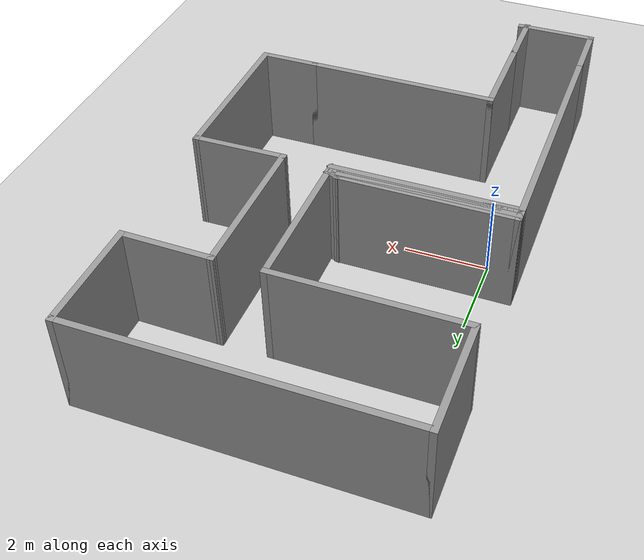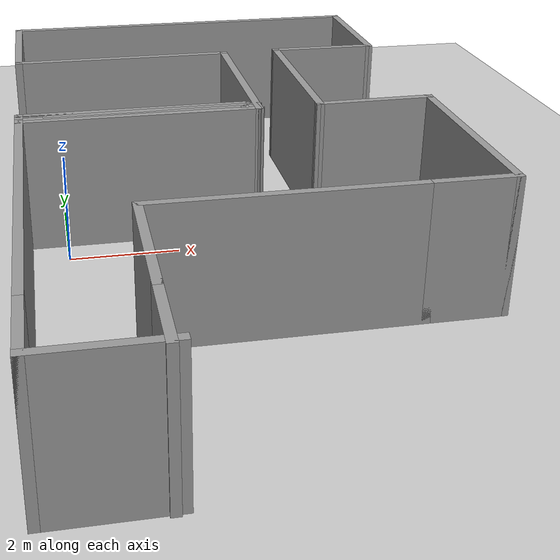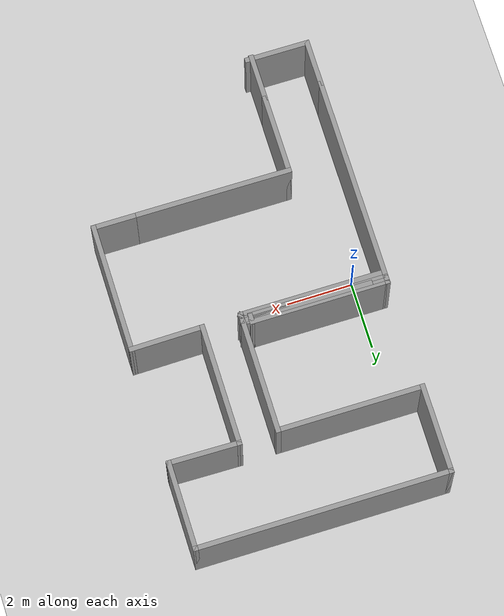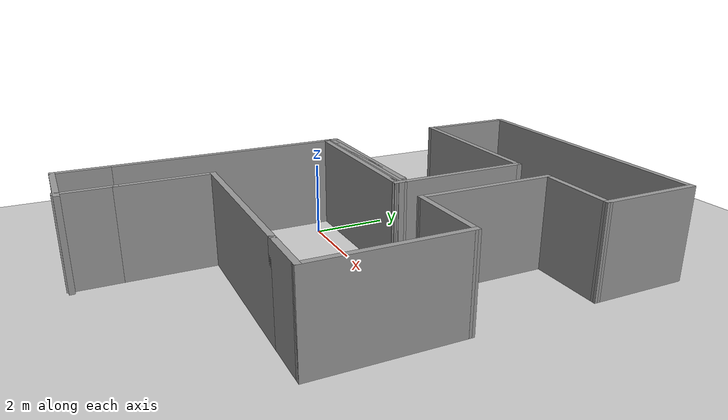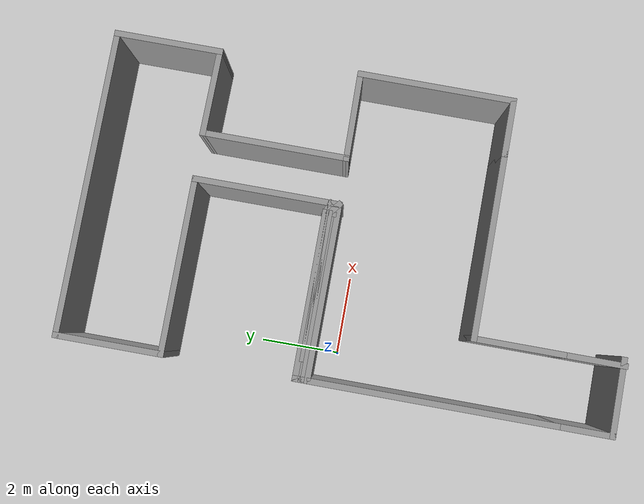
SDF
<sdf version="1.7">
 <world name="default">
  <light name="sun" type="directional">
   <pose>0 0 10 0 -0 0</pose>
   <diffuse>0.8 0.8 0.8 1</diffuse>
   <specular>0.2 0.2 0.2 1</specular>
   <attenuation>
    <range>1000</range>
    <constant>0.9</constant>
    <linear>0.01</linear>
    <quadratic>0.001</quadratic>
   </attenuation>
   <direction>-0.5 0.1 -0.9</direction>
   <spot><inner_angle>0</inner_angle><outer_angle>0</outer_angle><falloff>0</falloff></spot>
  </light>
  <model name="ground_plane">
   <static>1</static>
   <link name="link">
    <collision name="collision">
     <geometry><plane><normal>0 0 1</normal><size>100 100</size></plane></geometry>
     <surface>
      <contact><collide_bitmask>65535</collide_bitmask></contact>
      <friction><ode><mu>100</mu><mu2>50</mu2></ode></friction>
     </surface>
    </collision>
    <visual name="visual">
     <cast_shadows>0</cast_shadows>
     <geometry><plane><normal>0 0 1</normal><size>100 100</size></plane></geometry>
     <material>
      <script><uri>file://media/materials/scripts/gazebo.material</uri><name>Gazebo/Grey</name></script>
     </material>
    </visual>
   </link>
  </model>
  <gravity>0 0 -9.8</gravity>
  <magnetic_field>6e-06 2.3e-05 -4.2e-05</magnetic_field>
  <atmosphere type="adiabatic"/>
  <physics type="ode">
   <max_step_size>0.001</max_step_size>
   <real_time_factor>1</real_time_factor>
   <real_time_update_rate>1000</real_time_update_rate>
  </physics>
  <scene><ambient>0.4 0.4 0.4 1</ambient><background>0.7 0.7 0.7 1</background><shadows>1</shadows></scene>
  <spherical_coordinates>
   <surface_model>EARTH_WGS84</surface_model>
   <latitude_deg>0</latitude_deg>
   <longitude_deg>0</longitude_deg>
   <elevation>0</elevation>
   <heading_deg>0</heading_deg>
  </spherical_coordinates>
  <model name="paper3">
   <pose>3.09243 -0.04934 0 0 -0 0</pose>
   <link name="Wall_1">
    <collision name="Wall_1_Collision">
     <geometry><box><size>6.25 0.15 2.5</size></box></geometry>
     <pose>0 0 1.25 0 -0 0</pose>
    </collision>
    <visual name="Wall_1_Visual">
     <pose>0 0 1.25 0 -0 0</pose>
     <geometry><box><size>6.25 0.15 2.5</size></box></geometry>
     <material>
      <script><uri>file://media/materials/scripts/gazebo.material</uri><name>Gazebo/Grey</name></script>
      <ambient>1 1 1 1</ambient>
     </material>
     <meta><layer>0</layer></meta>
    </visual>
    <pose>-3.83052 -2.405 0 0 -0 -1.5708</pose>
   </link>
   <link name="Wall_12">
    <collision name="Wall_12_Collision">
     <geometry><box><size>0.25 0.15 2.5</size></box></geometry>
     <pose>0 0 1.25 0 -0 0</pose>
    </collision>
    <visual name="Wall_12_Visual">
     <pose>0 0 1.25 0 -0 0</pose>
     <geometry><box><size>0.25 0.15 2.5</size></box></geometry>
     <material>
      <script><uri>file://media/materials/scripts/gazebo.material</uri><name>Gazebo/Grey</name></script>
      <ambient>1 1 1 1</ambient>
     </material>
     <meta><layer>0</layer></meta>
    </visual>
    <pose>-3.83052 0.695 0 0 -0 1.5708</pose>
   </link>
   <link name="Wall_13">
    <collision name="Wall_13_Collision">
     <geometry><box><size>4.25 0.15 2.5</size></box></geometry>
     <pose>0 0 1.25 0 -0 0</pose>
    </collision>
    <visual name="Wall_13_Visual">
     <pose>0 0 1.25 0 -0 0</pose>
     <geometry><box><size>4.25 0.15 2.5</size></box></geometry>
     <material>
      <script><uri>file://media/materials/scripts/gazebo.material</uri><name>Gazebo/Grey</name></script>
      <ambient>1 1 1 1</ambient>
     </material>
     <meta><layer>0</layer></meta>
    </visual>
    <pose>-1.78052 0.745 0 0 -0 0</pose>
   </link>
   <link name="Wall_14">
    <collision name="Wall_14_Collision">
     <geometry><box><size>0.25 0.15 2.5</size></box></geometry>
     <pose>0 0 1.25 0 -0 0</pose>
    </collision>
    <visual name="Wall_14_Visual">
     <pose>0 0 1.25 0 -0 0</pose>
     <geometry><box><size>0.25 0.15 2.5</size></box></geometry>
     <material>
      <script><uri>file://media/materials/scripts/gazebo.material</uri><name>Gazebo/Grey</name></script>
      <ambient>1 1 1 1</ambient>
     </material>
     <meta><layer>0</layer></meta>
    </visual>
    <pose>0.269483 0.795 0 0 -0 1.5708</pose>
   </link>
   <link name="Wall_15">
    <collision name="Wall_15_Collision">
     <geometry><box><size>3.75 0.15 2.5</size></box></geometry>
     <pose>0 0 1.25 0 -0 0</pose>
    </collision>
    <visual name="Wall_15_Visual">
     <pose>0 0 1.25 0 -0 0</pose>
     <geometry><box><size>3.75 0.15 2.5</size></box></geometry>
     <material>
      <script><uri>file://media/materials/scripts/gazebo.material</uri><name>Gazebo/Grey</name></script>
      <ambient>1 1 1 1</ambient>
     </material>
     <meta><layer>0</layer></meta>
    </visual>
    <pose>-1.53052 0.845 0 0 -0 3.14159</pose>
   </link>
   <link name="Wall_17">
    <collision name="Wall_17_Collision">
     <geometry><box><size>0.25 0.15 2.5</size></box></geometry>
     <pose>0 0 1.25 0 -0 0</pose>
    </collision>
    <visual name="Wall_17_Visual">
     <pose>0 0 1.25 0 -0 0</pose>
     <geometry><box><size>0.25 0.15 2.5</size></box></geometry>
     <material>
      <script><uri>file://media/materials/scripts/gazebo.material</uri><name>Gazebo/Grey</name></script>
      <ambient>1 1 1 1</ambient>
     </material>
     <meta><layer>0</layer></meta>
    </visual>
    <pose>-3.83052 0.795 0 0 -0 1.5708</pose>
   </link>
   <link name="Wall_18">
    <collision name="Wall_18_Collision">
     <geometry><box><size>4.5 0.15 2.5</size></box></geometry>
     <pose>0 0 1.25 0 -0 0</pose>
    </collision>
    <visual name="Wall_18_Visual">
     <pose>0 0 1.25 0 -0 0</pose>
     <geometry><box><size>4.5 0.15 2.5</size></box></geometry>
     <material>
      <script><uri>file://media/materials/scripts/gazebo.material</uri><name>Gazebo/Grey</name></script>
      <ambient>1 1 1 1</ambient>
     </material>
     <meta><layer>0</layer></meta>
    </visual>
    <pose>-1.65552 0.845 0 0 -0 0</pose>
   </link>
   <link name="Wall_21">
    <collision name="Wall_21_Collision">
     <geometry><box><size>0.35 0.15 2.5</size></box></geometry>
     <pose>0 0 1.25 0 -0 0</pose>
    </collision>
    <visual name="Wall_21_Visual">
     <pose>0 0 1.25 0 -0 0</pose>
     <geometry><box><size>0.35 0.15 2.5</size></box></geometry>
     <material>
      <script><uri>file://media/materials/scripts/gazebo.material</uri><name>Gazebo/Grey</name></script>
      <ambient>1 1 1 1</ambient>
     </material>
     <meta><layer>0</layer></meta>
    </visual>
    <pose>0.519483 0.745 0 0 -0 -1.5708</pose>
   </link>
   <link name="Wall_22">
    <collision name="Wall_22_Collision">
     <geometry><box><size>0.470156 0.15 2.5</size></box></geometry>
     <pose>0 0 1.25 0 -0 0</pose>
    </collision>
    <visual name="Wall_22_Visual">
     <pose>0 0 1.25 0 -0 0</pose>
     <geometry><box><size>0.470156 0.15 2.5</size></box></geometry>
     <material>
      <script><uri>file://media/materials/scripts/gazebo.material</uri><name>Gazebo/Grey</name></script>
      <ambient>1 1 1 1</ambient>
     </material>
     <meta><layer>0</layer></meta>
    </visual>
    <pose>0.394483 0.745 0 0 -0 2.46685</pose>
   </link>
   <link name="Wall_24">
    <collision name="Wall_24_Collision">
     <geometry><box><size>0.25 0.15 2.5</size></box></geometry>
     <pose>0 0 1.25 0 -0 0</pose>
    </collision>
    <visual name="Wall_24_Visual">
     <pose>0 0 1.25 0 -0 0</pose>
     <geometry><box><size>0.25 0.15 2.5</size></box></geometry>
     <material>
      <script><uri>file://media/materials/scripts/gazebo.material</uri><name>Gazebo/Grey</name></script>
      <ambient>1 1 1 1</ambient>
     </material>
     <meta><layer>0</layer></meta>
    </visual>
    <pose>-3.83052 0.895 0 0 -0 1.5708</pose>
   </link>
   <link name="Wall_25">
    <collision name="Wall_25_Collision">
     <geometry><box><size>4.25 0.15 2.5</size></box></geometry>
     <pose>0 0 1.25 0 -0 0</pose>
    </collision>
    <visual name="Wall_25_Visual">
     <pose>0 0 1.25 0 -0 0</pose>
     <geometry><box><size>4.25 0.15 2.5</size></box></geometry>
     <material>
      <script><uri>file://media/materials/scripts/gazebo.material</uri><name>Gazebo/Grey</name></script>
      <ambient>1 1 1 1</ambient>
     </material>
     <meta><layer>0</layer></meta>
    </visual>
    <pose>-1.78052 0.945 0 0 -0 0</pose>
   </link>
   <link name="Wall_26">
    <collision name="Wall_26_Collision">
     <geometry><box><size>0.419258 0.15 2.5</size></box></geometry>
     <pose>0 0 1.25 0 -0 0</pose>
    </collision>
    <visual name="Wall_26_Visual">
     <pose>0 0 1.25 0 -0 0</pose>
     <geometry><box><size>0.419258 0.15 2.5</size></box></geometry>
     <material>
      <script><uri>file://media/materials/scripts/gazebo.material</uri><name>Gazebo/Grey</name></script>
      <ambient>1 1 1 1</ambient>
     </material>
     <meta><layer>0</layer></meta>
    </visual>
    <pose>0.394483 0.895 0 0 -0 -0.380506</pose>
   </link>
   <link name="Wall_35">
    <collision name="Wall_35_Collision">
     <geometry><box><size>3.75 0.15 2.5</size></box></geometry>
     <pose>0 0 1.25 0 -0 0</pose>
    </collision>
    <visual name="Wall_35_Visual">
     <pose>0 0 1.25 0 -0 0</pose>
     <geometry><box><size>3.75 0.15 2.5</size></box></geometry>
     <material>
      <script><uri>file://media/materials/scripts/gazebo.material</uri><name>Gazebo/Grey</name></script>
      <ambient>1 1 1 1</ambient>
     </material>
     <meta><layer>0</layer></meta>
    </visual>
    <pose>1.68213 2.47518 0 0 -0 -1.5708</pose>
   </link>
   <link name="Wall_39">
    <collision name="Wall_39_Collision">
     <geometry><box><size>1.5 0.15 2.5</size></box></geometry>
     <pose>0 0 1.25 0 -0 0</pose>
    </collision>
    <visual name="Wall_39_Visual">
     <pose>0 0 1.25 0 -0 0</pose>
     <geometry><box><size>1.5 0.15 2.5</size></box></geometry>
     <material>
      <script><uri>file://media/materials/scripts/gazebo.material</uri><name>Gazebo/Grey</name></script>
      <ambient>1 1 1 1</ambient>
     </material>
     <meta><layer>0</layer></meta>
    </visual>
    <pose>3.15448 -3.145 0 0 -0 0</pose>
   </link>
   <link name="Wall_4">
    <collision name="Wall_4_Collision">
     <geometry><box><size>2.5 0.15 2.5</size></box></geometry>
     <pose>0 0 1.25 0 -0 0</pose>
    </collision>
    <visual name="Wall_4_Visual">
     <pose>0 0 1.25 0 -0 0</pose>
     <geometry><box><size>2.5 0.15 2.5</size></box></geometry>
     <material>
      <script><uri>file://media/materials/scripts/gazebo.material</uri><name>Gazebo/Grey</name></script>
      <ambient>1 1 1 1</ambient>
     </material>
     <meta><layer>0</layer></meta>
    </visual>
    <pose>-2.12052 -4.32 0 0 -0 1.5708</pose>
   </link>
   <link name="Wall_40">
    <collision name="Wall_40_Collision">
     <geometry><box><size>4 0.15 2.5</size></box></geometry>
     <pose>0 0 1.25 0 -0 0</pose>
    </collision>
    <visual name="Wall_40_Visual">
     <pose>0 0 1.25 0 -0 0</pose>
     <geometry><box><size>4 0.15 2.5</size></box></geometry>
     <material>
      <script><uri>file://media/materials/scripts/gazebo.material</uri><name>Gazebo/Grey</name></script>
      <ambient>1 1 1 1</ambient>
     </material>
     <meta><layer>0</layer></meta>
    </visual>
    <pose>3.82948 -1.22 0 0 -0 1.5708</pose>
   </link>
   <link name="Wall_41">
    <collision name="Wall_41_Collision">
     <geometry><box><size>2.29756 0.15 2.5</size></box></geometry>
     <pose>0 0 1.25 0 -0 0</pose>
    </collision>
    <visual name="Wall_41_Visual">
     <pose>0 0 1.25 0 -0 0</pose>
     <geometry><box><size>2.29756 0.15 2.5</size></box></geometry>
     <material>
      <script><uri>file://media/materials/scripts/gazebo.material</uri><name>Gazebo/Grey</name></script>
      <ambient>1 1 1 1</ambient>
     </material>
     <meta><layer>0</layer></meta>
    </visual>
    <pose>2.7558 0.690087 0 0 -0 -3.1277</pose>
   </link>
   <link name="Wall_43">
    <collision name="Wall_43_Collision">
     <geometry><box><size>4.5 0.15 2.5</size></box></geometry>
     <pose>0 0 1.25 0 -0 0</pose>
    </collision>
    <visual name="Wall_43_Visual">
     <pose>0 0 1.25 0 -0 0</pose>
     <geometry><box><size>4.5 0.15 2.5</size></box></geometry>
     <material>
      <script><uri>file://media/materials/scripts/gazebo.material</uri><name>Gazebo/Grey</name></script>
      <ambient>1 1 1 1</ambient>
     </material>
     <meta><layer>0</layer></meta>
    </visual>
    <pose>-1.65552 4.245 0 0 -0 3.14159</pose>
   </link>
   <link name="Wall_44">
    <collision name="Wall_44_Collision">
     <geometry><box><size>2.75 0.15 2.5</size></box></geometry>
     <pose>0 0 1.25 0 -0 0</pose>
    </collision>
    <visual name="Wall_44_Visual">
     <pose>0 0 1.25 0 -0 0</pose>
     <geometry><box><size>2.75 0.15 2.5</size></box></geometry>
     <material>
      <script><uri>file://media/materials/scripts/gazebo.material</uri><name>Gazebo/Grey</name></script>
      <ambient>1 1 1 1</ambient>
     </material>
     <meta><layer>0</layer></meta>
    </visual>
    <pose>-3.83052 5.545 0 0 -0 1.5708</pose>
   </link>
   <link name="Wall_45">
    <collision name="Wall_45_Collision">
     <geometry><box><size>7.75 0.15 2.5</size></box></geometry>
     <pose>0 0 1.25 0 -0 0</pose>
    </collision>
    <visual name="Wall_45_Visual">
     <pose>0 0 1.25 0 -0 0</pose>
     <geometry><box><size>7.75 0.15 2.5</size></box></geometry>
     <material>
      <script><uri>file://media/materials/scripts/gazebo.material</uri><name>Gazebo/Grey</name></script>
      <ambient>1 1 1 1</ambient>
     </material>
     <meta><layer>0</layer></meta>
    </visual>
    <pose>-0.030517 6.845 0 0 -0 0</pose>
   </link>
   <link name="Wall_46">
    <collision name="Wall_46_Collision">
     <geometry><box><size>2.75 0.15 2.5</size></box></geometry>
     <pose>0 0 1.25 0 -0 0</pose>
    </collision>
    <visual name="Wall_46_Visual">
     <pose>0 0 1.25 0 -0 0</pose>
     <geometry><box><size>2.75 0.15 2.5</size></box></geometry>
     <material>
      <script><uri>file://media/materials/scripts/gazebo.material</uri><name>Gazebo/Grey</name></script>
      <ambient>1 1 1 1</ambient>
     </material>
     <meta><layer>0</layer></meta>
    </visual>
    <pose>3.76948 5.545 0 0 -0 -1.5708</pose>
   </link>
   <link name="Wall_47">
    <collision name="Wall_47_Collision">
     <geometry><box><size>2.23757 0.15 2.5</size></box></geometry>
     <pose>0 0 1.25 0 -0 0</pose>
    </collision>
    <visual name="Wall_47_Visual">
     <pose>0 0 1.25 0 -0 0</pose>
     <geometry><box><size>2.23757 0.15 2.5</size></box></geometry>
     <material>
      <script><uri>file://media/materials/scripts/gazebo.material</uri><name>Gazebo/Grey</name></script>
      <ambient>1 1 1 1</ambient>
     </material>
     <meta><layer>0</layer></meta>
    </visual>
    <pose>2.7258 4.26009 0 0 -0 3.12714</pose>
   </link>
   <link name="Wall_49">
    <collision name="Wall_49_Collision">
     <geometry><box><size>1.5 0.15 2.5</size></box></geometry>
     <pose>0 0 1.25 0 -0 0</pose>
    </collision>
    <visual name="Wall_49_Visual">
     <pose>0 0 1.25 0 -0 0</pose>
     <geometry><box><size>1.5 0.15 2.5</size></box></geometry>
     <material>
      <script><uri>file://media/materials/scripts/gazebo.material</uri><name>Gazebo/Grey</name></script>
      <ambient>1 1 1 1</ambient>
     </material>
     <meta><layer>0</layer></meta>
    </visual>
    <pose>-3.83052 -6.13 0 0 -0 -1.5708</pose>
   </link>
   <link name="Wall_5">
    <collision name="Wall_5_Collision">
     <geometry><box><size>4.75 0.15 2.5</size></box></geometry>
     <pose>0 0 1.25 0 -0 0</pose>
    </collision>
    <visual name="Wall_5_Visual">
     <pose>0 0 1.25 0 -0 0</pose>
     <geometry><box><size>4.75 0.15 2.5</size></box></geometry>
     <material>
      <script><uri>file://media/materials/scripts/gazebo.material</uri><name>Gazebo/Grey</name></script>
      <ambient>1 1 1 1</ambient>
     </material>
     <meta><layer>0</layer></meta>
    </visual>
    <pose>0.179483 -3.145 0 0 -0 0</pose>
   </link>
   <link name="Wall_50">
    <collision name="Wall_50_Collision">
     <geometry><box><size>2 0.15 2.5</size></box></geometry>
     <pose>0 0 1.25 0 -0 0</pose>
    </collision>
    <visual name="Wall_50_Visual">
     <pose>0 0 1.25 0 -0 0</pose>
     <geometry><box><size>2 0.15 2.5</size></box></geometry>
     <material>
      <script><uri>file://media/materials/scripts/gazebo.material</uri><name>Gazebo/Grey</name></script>
      <ambient>1 1 1 1</ambient>
     </material>
     <meta><layer>0</layer></meta>
    </visual>
    <pose>-2.90552 -6.805 0 0 -0 0</pose>
   </link>
   <link name="Wall_52">
    <collision name="Wall_52_Collision">
     <geometry><box><size>1.5 0.15 2.5</size></box></geometry>
     <pose>0 0 1.25 0 -0 0</pose>
    </collision>
    <visual name="Wall_52_Visual">
     <pose>0 0 1.25 0 -0 0</pose>
     <geometry><box><size>1.5 0.15 2.5</size></box></geometry>
     <material>
      <script><uri>file://media/materials/scripts/gazebo.material</uri><name>Gazebo/Grey</name></script>
      <ambient>1 1 1 1</ambient>
     </material>
     <meta><layer>0</layer></meta>
    </visual>
    <pose>-2.12052 -6.17 0 0 -0 -1.5708</pose>
   </link>
   <link name="Wall_7">
    <collision name="Wall_7_Collision">
     <geometry><box><size>4.5 0.15 2.5</size></box></geometry>
     <pose>0 0 1.25 0 -0 0</pose>
    </collision>
    <visual name="Wall_7_Visual">
     <pose>0 0 1.25 0 -0 0</pose>
     <geometry><box><size>4.5 0.15 2.5</size></box></geometry>
     <material>
      <script><uri>file://media/materials/scripts/gazebo.material</uri><name>Gazebo/Grey</name></script>
      <ambient>1 1 1 1</ambient>
     </material>
     <meta><layer>0</layer></meta>
    </visual>
    <pose>-1.65552 0.645 0 0 -0 0</pose>
   </link>
   <link name="Wall_8">
    <collision name="Wall_8_Collision">
     <geometry><box><size>3.75 0.15 2.5</size></box></geometry>
     <pose>0 0 1.25 0 -0 0</pose>
    </collision>
    <visual name="Wall_8_Visual">
     <pose>0 0 1.25 0 -0 0</pose>
     <geometry><box><size>3.75 0.15 2.5</size></box></geometry>
     <material>
      <script><uri>file://media/materials/scripts/gazebo.material</uri><name>Gazebo/Grey</name></script>
      <ambient>1 1 1 1</ambient>
     </material>
     <meta><layer>0</layer></meta>
    </visual>
    <pose>0.519483 2.445 0 0 -0 1.5708</pose>
   </link>
   <static>1</static>
  </model>
 </world>
</sdf>
